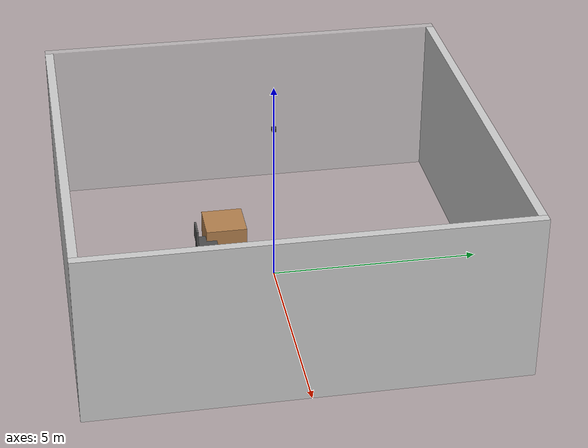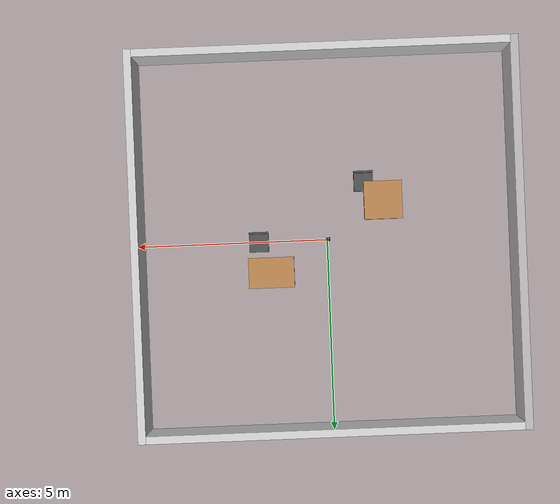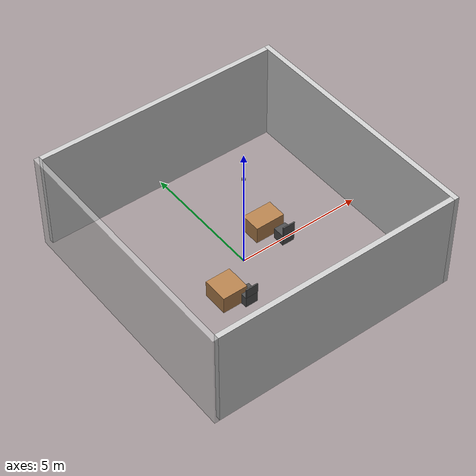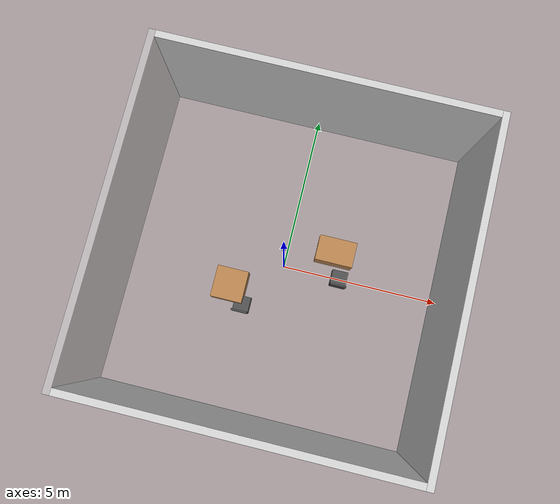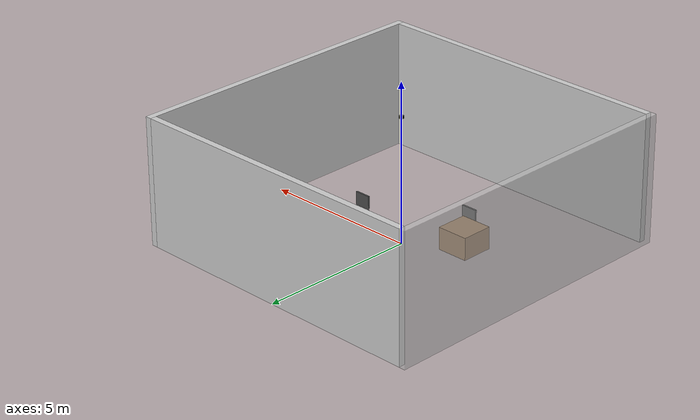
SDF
<?xml version="1.0"?>
<sdf version="1.6">
  <world name="lab_environment">
    <!-- Physics -->
    <physics name="1ms" type="ode">
      <max_step_size>0.001</max_step_size>
      <real_time_factor>1.0</real_time_factor>
      <real_time_update_rate>1000</real_time_update_rate>
      <dart>
        <collision_detector>bullet</collision_detector>
        <solver>
          <solver_type>pgs</solver_type>
        </solver>
      </dart>
    </physics>

    <!-- Plugins -->
    <plugin
      filename="ignition-gazebo-physics-system"
      name="ignition::gazebo::systems::Physics">
    </plugin>
    <plugin
      filename="ignition-gazebo-sensors-system"
      name="ignition::gazebo::systems::Sensors">
      <render_engine>ogre</render_engine>
    </plugin>
    <plugin
      filename="ignition-gazebo-user-commands-system"
      name="ignition::gazebo::systems::UserCommands">
    </plugin>
    <plugin
      filename="ignition-gazebo-scene-broadcaster-system"
      name="ignition::gazebo::systems::SceneBroadcaster">
    </plugin>

    <!-- GUI Elements -->

    <scene>
      <ambient>0.4 0.4 0.4</ambient>
      <background>0.8 0.8 0.8</background>
      <grid>false</grid>
    </scene>

    <!-- Lighting -->
    <light type="point" name="lamp">
      <pose>0 0 3.5 0 0 0</pose>
      <diffuse>0.8 0.7 0.4 1</diffuse>
      <specular>0.2 0.1 0.1 1</specular>
      <attenuation>
        <range>10</range>
        <linear>0.9</linear>
        <constant>0.7</constant>
        <quadratic>0.5</quadratic>
      </attenuation>
      <cast_shadows>true</cast_shadows>
      <visualize>false</visualize>
    </light>

    <light type="directional" name="sun">
      <cast_shadows>false</cast_shadows>
      <pose>0 0 100 0 0 0</pose>
      <diffuse>0.8 0.8 0.8 1</diffuse>
      <specular>0.2 0.2 0.2 1</specular>
      <attenuation>
        <range>1000</range>
        <constant>0.9</constant>
        <linear>0.01</linear>
        <quadratic>0.001</quadratic>
      </attenuation>
      <direction>-0.5 0.1 -0.9</direction>
    </light>

    <!-- Ground Plane -->

    <!-- Walls -->
    <model name="wall">
      <pose>0 0 0 0 0 0</pose>
      <link name="link">
        <!-- Collision Geometry for wall -->
        <collision name="left">
          <pose>0 4.9 2 0 0 0</pose>
          <geometry>
            <box>
              <size>9.6 0.2 4</size>
            </box>
          </geometry>
        </collision>
        <collision name="right">
          <pose>0 -4.9 2 0 0 0</pose>
          <geometry>
            <box>
              <size>9.6 0.2 4</size>
            </box>
          </geometry>
        </collision>
        <collision name="front">
          <pose>4.9 0 2 0 0 0</pose>
          <geometry>
            <box>
              <size>0.2 10 4</size>
            </box>
          </geometry>
        </collision>
        <collision name="back">
          <pose>-4.9 0 2 0 0 0</pose>
          <geometry>
            <box>
              <size>0.2 10 4</size>
            </box>
          </geometry>
        </collision>

        <!-- Visual Geometry for wall -->
        <visual name="left">
          <pose>0 4.9 2 0 0 0</pose>
          <geometry>
            <box>
              <size>9.6 0.2 4</size>
            </box>
          </geometry>
          <material>
            <ambient>0.8 0.8 0.8 1</ambient>
            <diffuse>0.8 0.8 0.8 1</diffuse>
            <specular>0.2 0.2 0.2 1</specular>
          </material>
        </visual>
        <visual name="right">
          <pose>0 -4.9 2 0 0 0</pose>
          <geometry>
            <box>
              <size>9.6 0.2 4</size>
            </box>
          </geometry>
          <material>
            <ambient>0.8 0.8 0.8 1</ambient>
            <diffuse>0.8 0.8 0.8 1</diffuse>
            <specular>0.2 0.2 0.2 1</specular>
          </material>
        </visual>
        <visual name="front">
          <pose>4.9 0 2 0 0 0</pose>
          <geometry>
            <box>
              <size>0.2 10 4</size>
            </box>
          </geometry>
          <material>
            <ambient>0.8 0.8 0.8 1</ambient>
            <diffuse>0.8 0.8 0.8 1</diffuse>
            <specular>0.2 0.2 0.2 1</specular>
          </material>
        </visual>
        <visual name="back">
          <pose>-4.9 0 2 0 0 0</pose>
          <geometry>
            <box>
              <size>0.2 10 4</size>
            </box>
          </geometry>
          <material>
            <ambient>0.8 0.8 0.8 1</ambient>
            <diffuse>0.8 0.8 0.8 0.6</diffuse>
            <specular>0.2 0.2 0.2 1</specular>
          </material>
        </visual>
      </link>
    </model>

    <!-- Table 1 -->
    <model name="table_1">
      <static>true</static>
      <pose>1.5 0.8 0.35 0 0 0</pose>
      <link name="link">
        <collision name="collision">
          <geometry>
            <box>
              <size>1.2 0.8 0.7</size>
            </box>
          </geometry>
        </collision>
        <visual name="visual">
          <geometry>
            <box>
              <size>1.2 0.8 0.7</size>
            </box>
          </geometry>
          <material>
            <ambient>0.7 0.5 0.3 1</ambient>
            <diffuse>0.7 0.5 0.3 1</diffuse>
            <specular>0.1 0.1 0.1 1</specular>
          </material>
        </visual>
      </link>
    </model>

    <!-- Table 2 -->
    <model name="table_2">
      <static>true</static>
      <pose>-1.5 -1.0 0.35 0 0 0</pose>
      <link name="link">
        <collision name="collision">
          <geometry>
            <box>
              <size>1.0 1.0 0.7</size>
            </box>
          </geometry>
        </collision>
        <visual name="visual">
          <geometry>
            <box>
              <size>1.0 1.0 0.7</size>
            </box>
          </geometry>
          <material>
            <ambient>0.7 0.5 0.3 1</ambient>
            <diffuse>0.7 0.5 0.3 1</diffuse>
            <specular>0.1 0.1 0.1 1</specular>
          </material>
        </visual>
      </link>
    </model>

    <!-- Chair 1 -->
    <model name="chair_1">
      <static>true</static>
      <pose>1.8 0.0 0.225 0 0 1.57</pose>
      <link name="base">
        <collision name="collision">
          <geometry>
            <box>
              <size>0.5 0.5 0.45</size>
            </box>
          </geometry>
        </collision>
        <visual name="visual">
          <geometry>
            <box>
              <size>0.5 0.5 0.45</size>
            </box>
          </geometry>
          <material>
            <ambient>0.3 0.3 0.3 1</ambient>
            <diffuse>0.3 0.3 0.3 1</diffuse>
            <specular>0.1 0.1 0.1 1</specular>
          </material>
        </visual>
      </link>
      <link name="back">
        <pose>-0.25 0 0.45 0 0 0</pose>
        <collision name="collision">
          <geometry>
            <box>
              <size>0.05 0.5 0.4</size>
            </box>
          </geometry>
        </collision>
        <visual name="visual">
          <geometry>
            <box>
              <size>0.05 0.5 0.4</size>
            </box>
          </geometry>
          <material>
            <ambient>0.3 0.3 0.3 1</ambient>
            <diffuse>0.3 0.3 0.3 1</diffuse>
            <specular>0.1 0.1 0.1 1</specular>
          </material>
        </visual>
      </link>
      <joint name="back_joint" type="fixed">
        <parent>base</parent>
        <child>back</child>
      </joint>
    </model>

    <!-- Chair 2 -->
    <model name="chair_2">
      <static>true</static>
      <pose>-1.0 -1.5 0.225 0 0 0</pose>
      <link name="base">
        <collision name="collision">
          <geometry>
            <box>
              <size>0.5 0.5 0.45</size>
            </box>
          </geometry>
        </collision>
        <visual name="visual">
          <geometry>
            <box>
              <size>0.5 0.5 0.45</size>
            </box>
          </geometry>
          <material>
            <ambient>0.3 0.3 0.3 1</ambient>
            <diffuse>0.3 0.3 0.3 1</diffuse>
            <specular>0.1 0.1 0.1 1</specular>
          </material>
        </visual>
      </link>
      <link name="back">
        <pose>0 -0.25 0.45 0 0 0</pose>
        <collision name="collision">
          <geometry>
            <box>
              <size>0.5 0.05 0.4</size>
            </box>
          </geometry>
        </collision>
        <visual name="visual">
          <geometry>
            <box>
              <size>0.5 0.05 0.4</size>
            </box>
          </geometry>
          <material>
            <ambient>0.3 0.3 0.3 1</ambient>
            <diffuse>0.3 0.3 0.3 1</diffuse>
            <specular>0.1 0.1 0.1 1</specular>
          </material>
        </visual>
      </link>
      <joint name="back_joint" type="fixed">
        <parent>base</parent>
        <child>back</child>
      </joint>
    </model>

    <!-- Ceiling Camera -->
    <model name="ceiling_camera">
      <static>true</static>
      <pose>0 0 3.95 0 1.57 0</pose> <!-- Positioned 3m above, pitched downwards -->
      <link name="link">
        <collision name="collision">
          <geometry>
            <box>
              <size>0.1 0.1 0.1</size>
            </box>
          </geometry>
        </collision>

        <visual name="visual">
          <geometry>
            <box>
              <size>0.1 0.1 0.1</size>
            </box>
          </geometry>
          <material>
            <ambient>0.0 0.0 0.0 1</ambient>
            <diffuse>0.0 0.0 0.0 1</diffuse>
            <specular>0.0 0.0 0.0 1</specular>
          </material>
        </visual>

        <sensor name="camera" type="camera">
          <pose>0 0 0 0 0 0</pose>
          <always_on>true</always_on>
          <update_rate>30</update_rate>
          <visualize>true</visualize>
          <topic>/camera</topic>
          <camera>
            <horizontal_fov>1.047</horizontal_fov>
            <image>
              <width>320</width>
              <height>240</height>
              <format>R8G8B8</format>
            </image>
            <clip>
              <near>0.1</near>
              <far>100</far>
            </clip>
          </camera>
        </sensor>
      </link>
    </model>
  </world>
</sdf>
